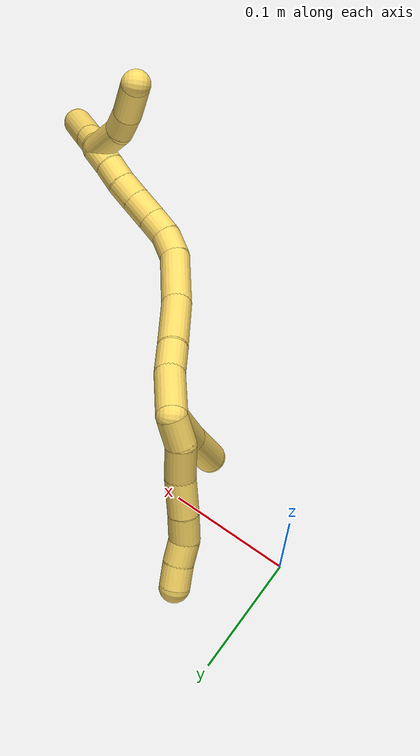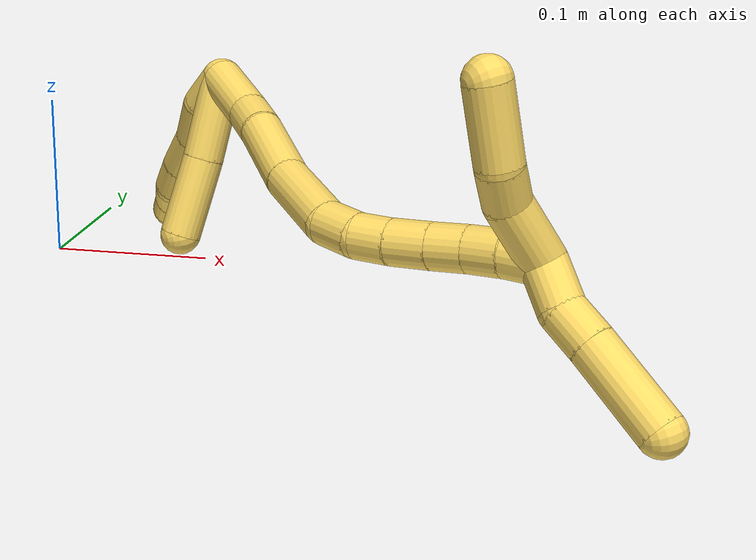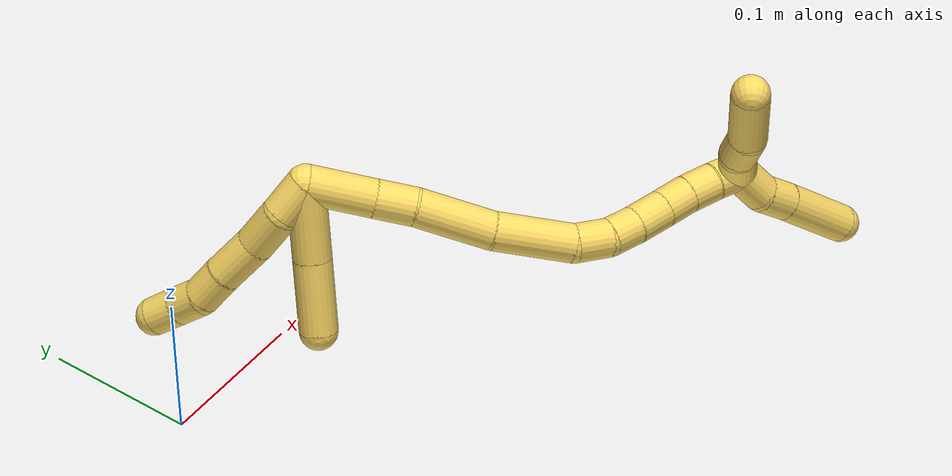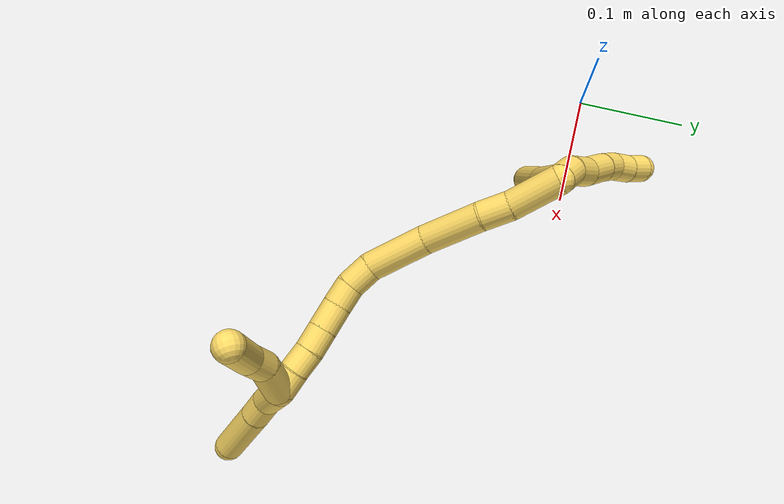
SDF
<sdf version="1.7">
 <world name="default">
  <model name="photoneo_s_sensor">
   <static>1</static>
   <pose>0 0 2 1.57079 1.57079 3.14159</pose>
   <link name="link">
    <inertial><mass>0.1</mass></inertial>
    <sensor name="sensor" type="depth">
     <update_rate>30</update_rate>
     <camera>
      <horizontal_fov>1.22</horizontal_fov>
      <image><width>1920</width><height>1200</height><format>B8G8R8</format></image>
      <clip><near>0.1</near><far>4</far></clip>
      <depth_camera><output>points</output></depth_camera>
     </camera>
     <plugin name="camera_plugin" filename="libgazebo_ros_depth_camera.so">
      <baseline>0.2</baseline>
      <alwaysOn>1</alwaysOn>
      <updateRate>0.0</updateRate>
      <cameraName>camera_ir</cameraName>
      <imageTopicName>/camera/color/image_raw</imageTopicName>
      <cameraInfoTopicName>/camera/color/camera_info</cameraInfoTopicName>
      <depthImageTopicName>/camera/depth/image_raw</depthImageTopicName>
      <depthImageCameraInfoTopicName>/camera/depth/camera_info</depthImageCameraInfoTopicName>
      <pointCloudTopicName>/camera/depth/points</pointCloudTopicName>
      <frameName>fr_optical</frameName>
      <pointCloudCutoff>0.1</pointCloudCutoff>
      <pointCloudCutoffMax>2.0</pointCloudCutoffMax>
      <distortionK1>0</distortionK1>
      <distortionK2>0</distortionK2>
      <distortionK3>0</distortionK3>
      <distortionT1>0</distortionT1>
      <distortionT2>0</distortionT2>
      <CxPrime>0</CxPrime>
      <Cx>0</Cx>
      <Cy>0</Cy>
      <focalLength>0</focalLength>
      <hackBaseline>0</hackBaseline>
     </plugin>
    </sensor>
   </link>
  </model>
  <model name="bin">
   <static>1</static>
   <link name="bottom">
    <collision name="collision-bottom">
     <pose>0 0 -0.01 0 -0 0</pose>
     <geometry><box><size>0.8 0.6 0.02</size></box></geometry>
     <surface>
      <friction><ode><mu>100</mu><mu2>100</mu2></ode></friction>
      <contact><collide_bitmask>65535</collide_bitmask></contact>
     </surface>
    </collision>
   </link>
   <link name="west_wall">
    <collision name="collision-west_wall">
     <pose>-0.41 0 0.1 0 -0 0</pose>
     <geometry><box><size>0.02 0.6 0.2</size></box></geometry>
     <surface>
      <friction><ode><mu>100</mu><mu2>100</mu2></ode></friction>
      <contact><collide_bitmask>65535</collide_bitmask></contact>
     </surface>
    </collision>
   </link>
   <link name="east_wall">
    <collision name="collision-east_wall">
     <pose>0.41 0 0.1 0 -0 0</pose>
     <geometry><box><size>0.02 0.6 0.2</size></box></geometry>
     <surface>
      <friction><ode><mu>100</mu><mu2>100</mu2></ode></friction>
      <contact><collide_bitmask>65535</collide_bitmask></contact>
     </surface>
    </collision>
   </link>
   <link name="south_wall">
    <collision name="collision-south_wall">
     <pose>0 -0.31 0.1 0 -0 0</pose>
     <geometry><box><size>0.8 0.02 0.2</size></box></geometry>
     <surface>
      <friction><ode><mu>100</mu><mu2>100</mu2></ode></friction>
      <contact><collide_bitmask>65535</collide_bitmask></contact>
     </surface>
    </collision>
   </link>
   <link name="north_wall">
    <collision name="collision-north_wall">
     <pose>0 0.31 0.1 0 -0 0</pose>
     <geometry><box><size>0.8 0.02 0.2</size></box></geometry>
     <surface>
      <friction><ode><mu>100</mu><mu2>100</mu2></ode></friction>
      <contact><collide_bitmask>65535</collide_bitmask></contact>
     </surface>
    </collision>
   </link>
  </model>
  <model name="5">
   <static>0</static>
   <link name="5">
    <collision name="collision-cylinder-e_1_2_8">
     <pose>0.001681 0.011258 0.005533 -1.114 0.133207 -0.083034</pose>
     <geometry><cylinder><radius>0.0125</radius><length>0.025313</length></cylinder></geometry>
     <surface>
      <friction><ode><mu>1.16</mu><mu2>1.16</mu2><slip1>0</slip1><slip2>0</slip2></ode></friction>
      <contact><ode><kp>1e+06</kp><kd>1</kd><max_vel>0</max_vel><min_depth>0.001</min_depth></ode></contact>
     </surface>
    </collision>
    <visual name="visual-cylinder-e_1_2_8">
     <pose>0.001681 0.011258 0.005533 -1.114 0.133207 -0.083034</pose>
     <geometry><cylinder><radius>0.0125</radius><length>0.025313</length></cylinder></geometry>
     <material><ambient>1 0.858824 0.4 1</ambient></material>
    </visual>
    <collision name="collision-cylinder-e_2_8_9">
     <pose>0.003423 0.037281 0.013617 -1.39972 0.004097 -0.00345</pose>
     <geometry><cylinder><radius>0.0125</radius><length>0.029966</length></cylinder></geometry>
     <surface>
      <friction><ode><mu>1.16</mu><mu2>1.16</mu2><slip1>0</slip1><slip2>0</slip2></ode></friction>
      <contact><ode><kp>1e+06</kp><kd>1</kd><max_vel>0</max_vel><min_depth>0.001</min_depth></ode></contact>
     </surface>
    </collision>
    <visual name="visual-cylinder-e_2_8_9">
     <pose>0.003423 0.037281 0.013617 -1.39972 0.004097 -0.00345</pose>
     <geometry><cylinder><radius>0.0125</radius><length>0.029966</length></cylinder></geometry>
     <material><ambient>1 0.858824 0.4 1</ambient></material>
    </visual>
    <collision name="collision-cylinder-e_3_9_10">
     <pose>0.005903 0.066797 0.019973 -1.31834 0.157403 -0.122052</pose>
     <geometry><cylinder><radius>0.0125</radius><length>0.030851</length></cylinder></geometry>
     <surface>
      <friction><ode><mu>1.16</mu><mu2>1.16</mu2><slip1>0</slip1><slip2>0</slip2></ode></friction>
      <contact><ode><kp>1e+06</kp><kd>1</kd><max_vel>0</max_vel><min_depth>0.001</min_depth></ode></contact>
     </surface>
    </collision>
    <visual name="visual-cylinder-e_3_9_10">
     <pose>0.005903 0.066797 0.019973 -1.31834 0.157403 -0.122052</pose>
     <geometry><cylinder><radius>0.0125</radius><length>0.030851</length></cylinder></geometry>
     <material><ambient>1 0.858824 0.4 1</ambient></material>
    </visual>
    <collision name="collision-cylinder-e_4_10_11">
     <pose>0.009334 0.092981 0.026315 -1.35245 0.086326 -0.069287</pose>
     <geometry><cylinder><radius>0.0125</radius><length>0.023508</length></cylinder></geometry>
     <surface>
      <friction><ode><mu>1.16</mu><mu2>1.16</mu2><slip1>0</slip1><slip2>0</slip2></ode></friction>
      <contact><ode><kp>1e+06</kp><kd>1</kd><max_vel>0</max_vel><min_depth>0.001</min_depth></ode></contact>
     </surface>
    </collision>
    <visual name="visual-cylinder-e_4_10_11">
     <pose>0.009334 0.092981 0.026315 -1.35245 0.086326 -0.069287</pose>
     <geometry><cylinder><radius>0.0125</radius><length>0.023508</length></cylinder></geometry>
     <material><ambient>1 0.858824 0.4 1</ambient></material>
    </visual>
    <collision name="collision-cylinder-e_5_11_12">
     <pose>0.012907 0.114182 0.027983 -1.65944 0.25528 -0.278681</pose>
     <geometry><cylinder><radius>0.0125</radius><length>0.020272</length></cylinder></geometry>
     <surface>
      <friction><ode><mu>1.16</mu><mu2>1.16</mu2><slip1>0</slip1><slip2>0</slip2></ode></friction>
      <contact><ode><kp>1e+06</kp><kd>1</kd><max_vel>0</max_vel><min_depth>0.001</min_depth></ode></contact>
     </surface>
    </collision>
    <visual name="visual-cylinder-e_5_11_12">
     <pose>0.012907 0.114182 0.027983 -1.65944 0.25528 -0.278681</pose>
     <geometry><cylinder><radius>0.0125</radius><length>0.020272</length></cylinder></geometry>
     <material><ambient>1 0.858824 0.4 1</ambient></material>
    </visual>
    <collision name="collision-cylinder-e_6_12_6">
     <pose>0.018774 0.133436 0.02703 -1.57977 0.335501 -0.338469</pose>
     <geometry><cylinder><radius>0.0125</radius><length>0.02009</length></cylinder></geometry>
     <surface>
      <friction><ode><mu>1.16</mu><mu2>1.16</mu2><slip1>0</slip1><slip2>0</slip2></ode></friction>
      <contact><ode><kp>1e+06</kp><kd>1</kd><max_vel>0</max_vel><min_depth>0.001</min_depth></ode></contact>
     </surface>
    </collision>
    <visual name="visual-cylinder-e_6_12_6">
     <pose>0.018774 0.133436 0.02703 -1.57977 0.335501 -0.338469</pose>
     <geometry><cylinder><radius>0.0125</radius><length>0.02009</length></cylinder></geometry>
     <material><ambient>1 0.858824 0.4 1</ambient></material>
    </visual>
    <collision name="collision-cylinder-e_1_2_13">
     <pose>-0.014076 0.017443 0.011851 -0.974034 -0.588581 0.318297</pose>
     <geometry><cylinder><radius>0.0125</radius><length>0.05071</length></cylinder></geometry>
     <surface>
      <friction><ode><mu>1.16</mu><mu2>1.16</mu2><slip1>0</slip1><slip2>0</slip2></ode></friction>
      <contact><ode><kp>1e+06</kp><kd>1</kd><max_vel>0</max_vel><min_depth>0.001</min_depth></ode></contact>
     </surface>
    </collision>
    <visual name="visual-cylinder-e_1_2_13">
     <pose>-0.014076 0.017443 0.011851 -0.974034 -0.588581 0.318297</pose>
     <geometry><cylinder><radius>0.0125</radius><length>0.05071</length></cylinder></geometry>
     <material><ambient>1 0.858824 0.4 1</ambient></material>
    </visual>
    <collision name="collision-cylinder-e_2_13_5">
     <pose>-0.041499 0.051135 0.036558 -0.901438 -0.572254 0.28285</pose>
     <geometry><cylinder><radius>0.0125</radius><length>0.04929</length></cylinder></geometry>
     <surface>
      <friction><ode><mu>1.16</mu><mu2>1.16</mu2><slip1>0</slip1><slip2>0</slip2></ode></friction>
      <contact><ode><kp>1e+06</kp><kd>1</kd><max_vel>0</max_vel><min_depth>0.001</min_depth></ode></contact>
     </surface>
    </collision>
    <visual name="visual-cylinder-e_2_13_5">
     <pose>-0.041499 0.051135 0.036558 -0.901438 -0.572254 0.28285</pose>
     <geometry><cylinder><radius>0.0125</radius><length>0.04929</length></cylinder></geometry>
     <material><ambient>1 0.858824 0.4 1</ambient></material>
    </visual>
    <collision name="collision-cylinder-e_1_2_14">
     <pose>-0.021234 -0.006251 3.4e-05 1.56535 -1.28451 -1.27929</pose>
     <geometry><cylinder><radius>0.0125</radius><length>0.04427</length></cylinder></geometry>
     <surface>
      <friction><ode><mu>1.16</mu><mu2>1.16</mu2><slip1>0</slip1><slip2>0</slip2></ode></friction>
      <contact><ode><kp>1e+06</kp><kd>1</kd><max_vel>0</max_vel><min_depth>0.001</min_depth></ode></contact>
     </surface>
    </collision>
    <visual name="visual-cylinder-e_1_2_14">
     <pose>-0.021234 -0.006251 3.4e-05 1.56535 -1.28451 -1.27929</pose>
     <geometry><cylinder><radius>0.0125</radius><length>0.04427</length></cylinder></geometry>
     <material><ambient>1 0.858824 0.4 1</ambient></material>
    </visual>
    <collision name="collision-cylinder-e_2_14_15">
     <pose>-0.05427 -0.017789 0.001349 1.33317 -1.13885 -0.93308</pose>
     <geometry><cylinder><radius>0.0125</radius><length>0.025991</length></cylinder></geometry>
     <surface>
      <friction><ode><mu>1.16</mu><mu2>1.16</mu2><slip1>0</slip1><slip2>0</slip2></ode></friction>
      <contact><ode><kp>1e+06</kp><kd>1</kd><max_vel>0</max_vel><min_depth>0.001</min_depth></ode></contact>
     </surface>
    </collision>
    <visual name="visual-cylinder-e_2_14_15">
     <pose>-0.05427 -0.017789 0.001349 1.33317 -1.13885 -0.93308</pose>
     <geometry><cylinder><radius>0.0125</radius><length>0.025991</length></cylinder></geometry>
     <material><ambient>1 0.858824 0.4 1</ambient></material>
    </visual>
    <collision name="collision-cylinder-e_3_15_16">
     <pose>-0.090309 -0.029912 0.005286 1.20007 -1.27697 -0.939738</pose>
     <geometry><cylinder><radius>0.0125</radius><length>0.050644</length></cylinder></geometry>
     <surface>
      <friction><ode><mu>1.16</mu><mu2>1.16</mu2><slip1>0</slip1><slip2>0</slip2></ode></friction>
      <contact><ode><kp>1e+06</kp><kd>1</kd><max_vel>0</max_vel><min_depth>0.001</min_depth></ode></contact>
     </surface>
    </collision>
    <visual name="visual-cylinder-e_3_15_16">
     <pose>-0.090309 -0.029912 0.005286 1.20007 -1.27697 -0.939738</pose>
     <geometry><cylinder><radius>0.0125</radius><length>0.050644</length></cylinder></geometry>
     <material><ambient>1 0.858824 0.4 1</ambient></material>
    </visual>
    <collision name="collision-cylinder-e_4_16_17">
     <pose>-0.138864 -0.046196 0.007852 1.58045 -1.20019 -1.2092</pose>
     <geometry><cylinder><radius>0.0125</radius><length>0.052178</length></cylinder></geometry>
     <surface>
      <friction><ode><mu>1.16</mu><mu2>1.16</mu2><slip1>0</slip1><slip2>0</slip2></ode></friction>
      <contact><ode><kp>1e+06</kp><kd>1</kd><max_vel>0</max_vel><min_depth>0.001</min_depth></ode></contact>
     </surface>
    </collision>
    <visual name="visual-cylinder-e_4_16_17">
     <pose>-0.138864 -0.046196 0.007852 1.58045 -1.20019 -1.2092</pose>
     <geometry><cylinder><radius>0.0125</radius><length>0.052178</length></cylinder></geometry>
     <material><ambient>1 0.858824 0.4 1</ambient></material>
    </visual>
    <collision name="collision-cylinder-e_5_17_18">
     <pose>-0.173136 -0.060296 0.003929 2.25989 -1.02639 -1.74755</pose>
     <geometry><cylinder><radius>0.0125</radius><length>0.023274</length></cylinder></geometry>
     <surface>
      <friction><ode><mu>1.16</mu><mu2>1.16</mu2><slip1>0</slip1><slip2>0</slip2></ode></friction>
      <contact><ode><kp>1e+06</kp><kd>1</kd><max_vel>0</max_vel><min_depth>0.001</min_depth></ode></contact>
     </surface>
    </collision>
    <visual name="visual-cylinder-e_5_17_18">
     <pose>-0.173136 -0.060296 0.003929 2.25989 -1.02639 -1.74755</pose>
     <geometry><cylinder><radius>0.0125</radius><length>0.023274</length></cylinder></geometry>
     <material><ambient>1 0.858824 0.4 1</ambient></material>
    </visual>
    <collision name="collision-cylinder-e_6_18_19">
     <pose>-0.190378 -0.068476 -0.005792 2.6018 -0.815261 -2.00203</pose>
     <geometry><cylinder><radius>0.0125</radius><length>0.020023</length></cylinder></geometry>
     <surface>
      <friction><ode><mu>1.16</mu><mu2>1.16</mu2><slip1>0</slip1><slip2>0</slip2></ode></friction>
      <contact><ode><kp>1e+06</kp><kd>1</kd><max_vel>0</max_vel><min_depth>0.001</min_depth></ode></contact>
     </surface>
    </collision>
    <visual name="visual-cylinder-e_6_18_19">
     <pose>-0.190378 -0.068476 -0.005792 2.6018 -0.815261 -2.00203</pose>
     <geometry><cylinder><radius>0.0125</radius><length>0.020023</length></cylinder></geometry>
     <material><ambient>1 0.858824 0.4 1</ambient></material>
    </visual>
    <collision name="collision-cylinder-e_7_19_20">
     <pose>-0.20551 -0.076382 -0.01891 2.59707 -0.748147 -1.90516</pose>
     <geometry><cylinder><radius>0.0125</radius><length>0.023062</length></cylinder></geometry>
     <surface>
      <friction><ode><mu>1.16</mu><mu2>1.16</mu2><slip1>0</slip1><slip2>0</slip2></ode></friction>
      <contact><ode><kp>1e+06</kp><kd>1</kd><max_vel>0</max_vel><min_depth>0.001</min_depth></ode></contact>
     </surface>
    </collision>
    <visual name="visual-cylinder-e_7_19_20">
     <pose>-0.20551 -0.076382 -0.01891 2.59707 -0.748147 -1.90516</pose>
     <geometry><cylinder><radius>0.0125</radius><length>0.023062</length></cylinder></geometry>
     <material><ambient>1 0.858824 0.4 1</ambient></material>
    </visual>
    <collision name="collision-cylinder-e_8_20_21">
     <pose>-0.220142 -0.084794 -0.03258 2.5821 -0.729032 -1.85089</pose>
     <geometry><cylinder><radius>0.0125</radius><length>0.020378</length></cylinder></geometry>
     <surface>
      <friction><ode><mu>1.16</mu><mu2>1.16</mu2><slip1>0</slip1><slip2>0</slip2></ode></friction>
      <contact><ode><kp>1e+06</kp><kd>1</kd><max_vel>0</max_vel><min_depth>0.001</min_depth></ode></contact>
     </surface>
    </collision>
    <visual name="visual-cylinder-e_8_20_21">
     <pose>-0.220142 -0.084794 -0.03258 2.5821 -0.729032 -1.85089</pose>
     <geometry><cylinder><radius>0.0125</radius><length>0.020378</length></cylinder></geometry>
     <material><ambient>1 0.858824 0.4 1</ambient></material>
    </visual>
    <collision name="collision-cylinder-e_9_21_22">
     <pose>-0.234134 -0.093215 -0.044532 2.46914 -0.796597 -1.75538</pose>
     <geometry><cylinder><radius>0.0125</radius><length>0.020152</length></cylinder></geometry>
     <surface>
      <friction><ode><mu>1.16</mu><mu2>1.16</mu2><slip1>0</slip1><slip2>0</slip2></ode></friction>
      <contact><ode><kp>1e+06</kp><kd>1</kd><max_vel>0</max_vel><min_depth>0.001</min_depth></ode></contact>
     </surface>
    </collision>
    <visual name="visual-cylinder-e_9_21_22">
     <pose>-0.234134 -0.093215 -0.044532 2.46914 -0.796597 -1.75538</pose>
     <geometry><cylinder><radius>0.0125</radius><length>0.020152</length></cylinder></geometry>
     <material><ambient>1 0.858824 0.4 1</ambient></material>
    </visual>
    <collision name="collision-cylinder-e_10_22_1">
     <pose>-0.248878 -0.101172 -0.055581 2.56913 -0.852647 -1.99164</pose>
     <geometry><cylinder><radius>0.0125</radius><length>0.020027</length></cylinder></geometry>
     <surface>
      <friction><ode><mu>1.16</mu><mu2>1.16</mu2><slip1>0</slip1><slip2>0</slip2></ode></friction>
      <contact><ode><kp>1e+06</kp><kd>1</kd><max_vel>0</max_vel><min_depth>0.001</min_depth></ode></contact>
     </surface>
    </collision>
    <visual name="visual-cylinder-e_10_22_1">
     <pose>-0.248878 -0.101172 -0.055581 2.56913 -0.852647 -1.99164</pose>
     <geometry><cylinder><radius>0.0125</radius><length>0.020027</length></cylinder></geometry>
     <material><ambient>1 0.858824 0.4 1</ambient></material>
    </visual>
    <collision name="collision-cylinder-e_1_1_23">
     <pose>-0.268877 -0.101416 -0.059967 -1.2374 -1.29544 0.988206</pose>
     <geometry><cylinder><radius>0.0125</radius><length>0.025892</length></cylinder></geometry>
     <surface>
      <friction><ode><mu>1.16</mu><mu2>1.16</mu2><slip1>0</slip1><slip2>0</slip2></ode></friction>
      <contact><ode><kp>1e+06</kp><kd>1</kd><max_vel>0</max_vel><min_depth>0.001</min_depth></ode></contact>
     </surface>
    </collision>
    <visual name="visual-cylinder-e_1_1_23">
     <pose>-0.268877 -0.101416 -0.059967 -1.2374 -1.29544 0.988206</pose>
     <geometry><cylinder><radius>0.0125</radius><length>0.025892</length></cylinder></geometry>
     <material><ambient>1 0.858824 0.4 1</ambient></material>
    </visual>
    <collision name="collision-cylinder-e_2_23_24">
     <pose>-0.292007 -0.097071 -0.060995 -2.70439 -1.3491 2.59966</pose>
     <geometry><cylinder><radius>0.0125</radius><length>0.02188</length></cylinder></geometry>
     <surface>
      <friction><ode><mu>1.16</mu><mu2>1.16</mu2><slip1>0</slip1><slip2>0</slip2></ode></friction>
      <contact><ode><kp>1e+06</kp><kd>1</kd><max_vel>0</max_vel><min_depth>0.001</min_depth></ode></contact>
     </surface>
    </collision>
    <visual name="visual-cylinder-e_2_23_24">
     <pose>-0.292007 -0.097071 -0.060995 -2.70439 -1.3491 2.59966</pose>
     <geometry><cylinder><radius>0.0125</radius><length>0.02188</length></cylinder></geometry>
     <material><ambient>1 0.858824 0.4 1</ambient></material>
    </visual>
    <collision name="collision-cylinder-e_3_24_4">
     <pose>-0.328285 -0.093174 -0.067419 -2.54582 -1.37311 2.42472</pose>
     <geometry><cylinder><radius>0.0125</radius><length>0.052229</length></cylinder></geometry>
     <surface>
      <friction><ode><mu>1.16</mu><mu2>1.16</mu2><slip1>0</slip1><slip2>0</slip2></ode></friction>
      <contact><ode><kp>1e+06</kp><kd>1</kd><max_vel>0</max_vel><min_depth>0.001</min_depth></ode></contact>
     </surface>
    </collision>
    <visual name="visual-cylinder-e_3_24_4">
     <pose>-0.328285 -0.093174 -0.067419 -2.54582 -1.37311 2.42472</pose>
     <geometry><cylinder><radius>0.0125</radius><length>0.052229</length></cylinder></geometry>
     <material><ambient>1 0.858824 0.4 1</ambient></material>
    </visual>
    <collision name="collision-cylinder-e_1_1_25">
     <pose>-0.245829 -0.118101 -0.054459 1.10833 0.617013 0.389434</pose>
     <geometry><cylinder><radius>0.0125</radius><length>0.036604</length></cylinder></geometry>
     <surface>
      <friction><ode><mu>1.16</mu><mu2>1.16</mu2><slip1>0</slip1><slip2>0</slip2></ode></friction>
      <contact><ode><kp>1e+06</kp><kd>1</kd><max_vel>0</max_vel><min_depth>0.001</min_depth></ode></contact>
     </surface>
    </collision>
    <visual name="visual-cylinder-e_1_1_25">
     <pose>-0.245829 -0.118101 -0.054459 1.10833 0.617013 0.389434</pose>
     <geometry><cylinder><radius>0.0125</radius><length>0.036604</length></cylinder></geometry>
     <material><ambient>1 0.858824 0.4 1</ambient></material>
    </visual>
    <collision name="collision-cylinder-e_2_25_26">
     <pose>-0.23119 -0.141391 -0.046121 1.40337 0.382322 0.32425</pose>
     <geometry><cylinder><radius>0.0125</radius><length>0.02171</length></cylinder></geometry>
     <surface>
      <friction><ode><mu>1.16</mu><mu2>1.16</mu2><slip1>0</slip1><slip2>0</slip2></ode></friction>
      <contact><ode><kp>1e+06</kp><kd>1</kd><max_vel>0</max_vel><min_depth>0.001</min_depth></ode></contact>
     </surface>
    </collision>
    <visual name="visual-cylinder-e_2_25_26">
     <pose>-0.23119 -0.141391 -0.046121 1.40337 0.382322 0.32425</pose>
     <geometry><cylinder><radius>0.0125</radius><length>0.02171</length></cylinder></geometry>
     <material><ambient>1 0.858824 0.4 1</ambient></material>
    </visual>
    <collision name="collision-cylinder-e_3_26_3">
     <pose>-0.214934 -0.168212 -0.044798 1.59185 0.625659 0.638093</pose>
     <geometry><cylinder><radius>0.0125</radius><length>0.041686</length></cylinder></geometry>
     <surface>
      <friction><ode><mu>1.16</mu><mu2>1.16</mu2><slip1>0</slip1><slip2>0</slip2></ode></friction>
      <contact><ode><kp>1e+06</kp><kd>1</kd><max_vel>0</max_vel><min_depth>0.001</min_depth></ode></contact>
     </surface>
    </collision>
    <visual name="visual-cylinder-e_3_26_3">
     <pose>-0.214934 -0.168212 -0.044798 1.59185 0.625659 0.638093</pose>
     <geometry><cylinder><radius>0.0125</radius><length>0.041686</length></cylinder></geometry>
     <material><ambient>1 0.858824 0.4 1</ambient></material>
    </visual>
    <collision name="collision-sphere-3">
     <pose>-0.202727 -0.185103 -0.045154 0 -0 0</pose>
     <geometry><sphere><radius>0.0125</radius></sphere></geometry>
     <surface>
      <friction><ode><mu>1.16</mu><mu2>1.16</mu2><slip1>0</slip1><slip2>0</slip2></ode></friction>
      <contact><ode><kp>1e+06</kp><kd>1</kd><max_vel>0</max_vel><min_depth>0.001</min_depth></ode></contact>
     </surface>
    </collision>
    <visual name="visual-sphere-3">
     <pose>-0.202727 -0.185103 -0.045154 0 -0 0</pose>
     <geometry><sphere><radius>0.0125</radius></sphere></geometry>
     <material><ambient>1 0.858824 0.4 1</ambient></material>
    </visual>
    <collision name="collision-sphere-26">
     <pose>-0.22714 -0.151321 -0.044442 0 -0 0</pose>
     <geometry><sphere><radius>0.0125</radius></sphere></geometry>
     <surface>
      <friction><ode><mu>1.16</mu><mu2>1.16</mu2><slip1>0</slip1><slip2>0</slip2></ode></friction>
      <contact><ode><kp>1e+06</kp><kd>1</kd><max_vel>0</max_vel><min_depth>0.001</min_depth></ode></contact>
     </surface>
    </collision>
    <visual name="visual-sphere-26">
     <pose>-0.22714 -0.151321 -0.044442 0 -0 0</pose>
     <geometry><sphere><radius>0.0125</radius></sphere></geometry>
     <material><ambient>1 0.858824 0.4 1</ambient></material>
    </visual>
    <collision name="collision-sphere-25">
     <pose>-0.235239 -0.131461 -0.047799 0 -0 0</pose>
     <geometry><sphere><radius>0.0125</radius></sphere></geometry>
     <surface>
      <friction><ode><mu>1.16</mu><mu2>1.16</mu2><slip1>0</slip1><slip2>0</slip2></ode></friction>
      <contact><ode><kp>1e+06</kp><kd>1</kd><max_vel>0</max_vel><min_depth>0.001</min_depth></ode></contact>
     </surface>
    </collision>
    <visual name="visual-sphere-25">
     <pose>-0.235239 -0.131461 -0.047799 0 -0 0</pose>
     <geometry><sphere><radius>0.0125</radius></sphere></geometry>
     <material><ambient>1 0.858824 0.4 1</ambient></material>
    </visual>
    <collision name="collision-sphere-4">
     <pose>-0.35389 -0.090296 -0.071665 0 -0 0</pose>
     <geometry><sphere><radius>0.0125</radius></sphere></geometry>
     <surface>
      <friction><ode><mu>1.16</mu><mu2>1.16</mu2><slip1>0</slip1><slip2>0</slip2></ode></friction>
      <contact><ode><kp>1e+06</kp><kd>1</kd><max_vel>0</max_vel><min_depth>0.001</min_depth></ode></contact>
     </surface>
    </collision>
    <visual name="visual-sphere-4">
     <pose>-0.35389 -0.090296 -0.071665 0 -0 0</pose>
     <geometry><sphere><radius>0.0125</radius></sphere></geometry>
     <material><ambient>1 0.858824 0.4 1</ambient></material>
    </visual>
    <collision name="collision-sphere-24">
     <pose>-0.302679 -0.096052 -0.063174 0 -0 0</pose>
     <geometry><sphere><radius>0.0125</radius></sphere></geometry>
     <surface>
      <friction><ode><mu>1.16</mu><mu2>1.16</mu2><slip1>0</slip1><slip2>0</slip2></ode></friction>
      <contact><ode><kp>1e+06</kp><kd>1</kd><max_vel>0</max_vel><min_depth>0.001</min_depth></ode></contact>
     </surface>
    </collision>
    <visual name="visual-sphere-24">
     <pose>-0.302679 -0.096052 -0.063174 0 -0 0</pose>
     <geometry><sphere><radius>0.0125</radius></sphere></geometry>
     <material><ambient>1 0.858824 0.4 1</ambient></material>
    </visual>
    <collision name="collision-sphere-23">
     <pose>-0.281335 -0.098089 -0.058815 0 -0 0</pose>
     <geometry><sphere><radius>0.0125</radius></sphere></geometry>
     <surface>
      <friction><ode><mu>1.16</mu><mu2>1.16</mu2><slip1>0</slip1><slip2>0</slip2></ode></friction>
      <contact><ode><kp>1e+06</kp><kd>1</kd><max_vel>0</max_vel><min_depth>0.001</min_depth></ode></contact>
     </surface>
    </collision>
    <visual name="visual-sphere-23">
     <pose>-0.281335 -0.098089 -0.058815 0 -0 0</pose>
     <geometry><sphere><radius>0.0125</radius></sphere></geometry>
     <material><ambient>1 0.858824 0.4 1</ambient></material>
    </visual>
    <collision name="collision-sphere-1">
     <pose>-0.256419 -0.104742 -0.061119 0 -0 0</pose>
     <geometry><sphere><radius>0.0125</radius></sphere></geometry>
     <surface>
      <friction><ode><mu>1.16</mu><mu2>1.16</mu2><slip1>0</slip1><slip2>0</slip2></ode></friction>
      <contact><ode><kp>1e+06</kp><kd>1</kd><max_vel>0</max_vel><min_depth>0.001</min_depth></ode></contact>
     </surface>
    </collision>
    <visual name="visual-sphere-1">
     <pose>-0.256419 -0.104742 -0.061119 0 -0 0</pose>
     <geometry><sphere><radius>0.0125</radius></sphere></geometry>
     <material><ambient>1 0.858824 0.4 1</ambient></material>
    </visual>
    <collision name="collision-sphere-22">
     <pose>-0.241338 -0.097603 -0.050043 0 -0 0</pose>
     <geometry><sphere><radius>0.0125</radius></sphere></geometry>
     <surface>
      <friction><ode><mu>1.16</mu><mu2>1.16</mu2><slip1>0</slip1><slip2>0</slip2></ode></friction>
      <contact><ode><kp>1e+06</kp><kd>1</kd><max_vel>0</max_vel><min_depth>0.001</min_depth></ode></contact>
     </surface>
    </collision>
    <visual name="visual-sphere-22">
     <pose>-0.241338 -0.097603 -0.050043 0 -0 0</pose>
     <geometry><sphere><radius>0.0125</radius></sphere></geometry>
     <material><ambient>1 0.858824 0.4 1</ambient></material>
    </visual>
    <collision name="collision-sphere-21">
     <pose>-0.22693 -0.088827 -0.039021 0 -0 0</pose>
     <geometry><sphere><radius>0.0125</radius></sphere></geometry>
     <surface>
      <friction><ode><mu>1.16</mu><mu2>1.16</mu2><slip1>0</slip1><slip2>0</slip2></ode></friction>
      <contact><ode><kp>1e+06</kp><kd>1</kd><max_vel>0</max_vel><min_depth>0.001</min_depth></ode></contact>
     </surface>
    </collision>
    <visual name="visual-sphere-21">
     <pose>-0.22693 -0.088827 -0.039021 0 -0 0</pose>
     <geometry><sphere><radius>0.0125</radius></sphere></geometry>
     <material><ambient>1 0.858824 0.4 1</ambient></material>
    </visual>
    <collision name="collision-sphere-12">
     <pose>0.015467 0.123951 0.027115 0 -0 0</pose>
     <geometry><sphere><radius>0.0125</radius></sphere></geometry>
     <surface>
      <friction><ode><mu>1.16</mu><mu2>1.16</mu2><slip1>0</slip1><slip2>0</slip2></ode></friction>
      <contact><ode><kp>1e+06</kp><kd>1</kd><max_vel>0</max_vel><min_depth>0.001</min_depth></ode></contact>
     </surface>
    </collision>
    <visual name="visual-sphere-12">
     <pose>0.015467 0.123951 0.027115 0 -0 0</pose>
     <geometry><sphere><radius>0.0125</radius></sphere></geometry>
     <material><ambient>1 0.858824 0.4 1</ambient></material>
    </visual>
    <collision name="collision-sphere-11">
     <pose>0.010347 0.104413 0.028851 0 -0 0</pose>
     <geometry><sphere><radius>0.0125</radius></sphere></geometry>
     <surface>
      <friction><ode><mu>1.16</mu><mu2>1.16</mu2><slip1>0</slip1><slip2>0</slip2></ode></friction>
      <contact><ode><kp>1e+06</kp><kd>1</kd><max_vel>0</max_vel><min_depth>0.001</min_depth></ode></contact>
     </surface>
    </collision>
    <visual name="visual-sphere-11">
     <pose>0.010347 0.104413 0.028851 0 -0 0</pose>
     <geometry><sphere><radius>0.0125</radius></sphere></geometry>
     <material><ambient>1 0.858824 0.4 1</ambient></material>
    </visual>
    <collision name="collision-sphere-10">
     <pose>0.008321 0.081548 0.023778 0 -0 0</pose>
     <geometry><sphere><radius>0.0125</radius></sphere></geometry>
     <surface>
      <friction><ode><mu>1.16</mu><mu2>1.16</mu2><slip1>0</slip1><slip2>0</slip2></ode></friction>
      <contact><ode><kp>1e+06</kp><kd>1</kd><max_vel>0</max_vel><min_depth>0.001</min_depth></ode></contact>
     </surface>
    </collision>
    <visual name="visual-sphere-10">
     <pose>0.008321 0.081548 0.023778 0 -0 0</pose>
     <geometry><sphere><radius>0.0125</radius></sphere></geometry>
     <material><ambient>1 0.858824 0.4 1</ambient></material>
    </visual>
    <collision name="collision-sphere-9">
     <pose>0.003485 0.052045 0.016167 0 -0 0</pose>
     <geometry><sphere><radius>0.0125</radius></sphere></geometry>
     <surface>
      <friction><ode><mu>1.16</mu><mu2>1.16</mu2><slip1>0</slip1><slip2>0</slip2></ode></friction>
      <contact><ode><kp>1e+06</kp><kd>1</kd><max_vel>0</max_vel><min_depth>0.001</min_depth></ode></contact>
     </surface>
    </collision>
    <visual name="visual-sphere-9">
     <pose>0.003485 0.052045 0.016167 0 -0 0</pose>
     <geometry><sphere><radius>0.0125</radius></sphere></geometry>
     <material><ambient>1 0.858824 0.4 1</ambient></material>
    </visual>
    <collision name="collision-sphere-2">
     <geometry><sphere><radius>0.0125</radius></sphere></geometry>
     <surface>
      <friction><ode><mu>1.16</mu><mu2>1.16</mu2><slip1>0</slip1><slip2>0</slip2></ode></friction>
      <contact><ode><kp>1e+06</kp><kd>1</kd><max_vel>0</max_vel><min_depth>0.001</min_depth></ode></contact>
     </surface>
    </collision>
    <visual name="visual-sphere-2">
     <geometry><sphere><radius>0.0125</radius></sphere></geometry>
     <material><ambient>1 0.858824 0.4 1</ambient></material>
    </visual>
    <collision name="collision-sphere-19">
     <pose>-0.197666 -0.072004 -0.011681 0 -0 0</pose>
     <geometry><sphere><radius>0.0125</radius></sphere></geometry>
     <surface>
      <friction><ode><mu>1.16</mu><mu2>1.16</mu2><slip1>0</slip1><slip2>0</slip2></ode></friction>
      <contact><ode><kp>1e+06</kp><kd>1</kd><max_vel>0</max_vel><min_depth>0.001</min_depth></ode></contact>
     </surface>
    </collision>
    <visual name="visual-sphere-19">
     <pose>-0.197666 -0.072004 -0.011681 0 -0 0</pose>
     <geometry><sphere><radius>0.0125</radius></sphere></geometry>
     <material><ambient>1 0.858824 0.4 1</ambient></material>
    </visual>
    <collision name="collision-sphere-8">
     <pose>0.003362 0.022516 0.011066 0 -0 0</pose>
     <geometry><sphere><radius>0.0125</radius></sphere></geometry>
     <surface>
      <friction><ode><mu>1.16</mu><mu2>1.16</mu2><slip1>0</slip1><slip2>0</slip2></ode></friction>
      <contact><ode><kp>1e+06</kp><kd>1</kd><max_vel>0</max_vel><min_depth>0.001</min_depth></ode></contact>
     </surface>
    </collision>
    <visual name="visual-sphere-8">
     <pose>0.003362 0.022516 0.011066 0 -0 0</pose>
     <geometry><sphere><radius>0.0125</radius></sphere></geometry>
     <material><ambient>1 0.858824 0.4 1</ambient></material>
    </visual>
    <collision name="collision-sphere-6">
     <pose>0.022081 0.14292 0.026945 0 -0 0</pose>
     <geometry><sphere><radius>0.0125</radius></sphere></geometry>
     <surface>
      <friction><ode><mu>1.16</mu><mu2>1.16</mu2><slip1>0</slip1><slip2>0</slip2></ode></friction>
      <contact><ode><kp>1e+06</kp><kd>1</kd><max_vel>0</max_vel><min_depth>0.001</min_depth></ode></contact>
     </surface>
    </collision>
    <visual name="visual-sphere-6">
     <pose>0.022081 0.14292 0.026945 0 -0 0</pose>
     <geometry><sphere><radius>0.0125</radius></sphere></geometry>
     <material><ambient>1 0.858824 0.4 1</ambient></material>
    </visual>
    <collision name="collision-sphere-13">
     <pose>-0.028153 0.034887 0.023702 0 -0 0</pose>
     <geometry><sphere><radius>0.0125</radius></sphere></geometry>
     <surface>
      <friction><ode><mu>1.16</mu><mu2>1.16</mu2><slip1>0</slip1><slip2>0</slip2></ode></friction>
      <contact><ode><kp>1e+06</kp><kd>1</kd><max_vel>0</max_vel><min_depth>0.001</min_depth></ode></contact>
     </surface>
    </collision>
    <visual name="visual-sphere-13">
     <pose>-0.028153 0.034887 0.023702 0 -0 0</pose>
     <geometry><sphere><radius>0.0125</radius></sphere></geometry>
     <material><ambient>1 0.858824 0.4 1</ambient></material>
    </visual>
    <collision name="collision-sphere-5">
     <pose>-0.054845 0.067383 0.049413 0 -0 0</pose>
     <geometry><sphere><radius>0.0125</radius></sphere></geometry>
     <surface>
      <friction><ode><mu>1.16</mu><mu2>1.16</mu2><slip1>0</slip1><slip2>0</slip2></ode></friction>
      <contact><ode><kp>1e+06</kp><kd>1</kd><max_vel>0</max_vel><min_depth>0.001</min_depth></ode></contact>
     </surface>
    </collision>
    <visual name="visual-sphere-5">
     <pose>-0.054845 0.067383 0.049413 0 -0 0</pose>
     <geometry><sphere><radius>0.0125</radius></sphere></geometry>
     <material><ambient>1 0.858824 0.4 1</ambient></material>
    </visual>
    <collision name="collision-sphere-14">
     <pose>-0.042468 -0.012501 6.8e-05 0 -0 0</pose>
     <geometry><sphere><radius>0.0125</radius></sphere></geometry>
     <surface>
      <friction><ode><mu>1.16</mu><mu2>1.16</mu2><slip1>0</slip1><slip2>0</slip2></ode></friction>
      <contact><ode><kp>1e+06</kp><kd>1</kd><max_vel>0</max_vel><min_depth>0.001</min_depth></ode></contact>
     </surface>
    </collision>
    <visual name="visual-sphere-14">
     <pose>-0.042468 -0.012501 6.8e-05 0 -0 0</pose>
     <geometry><sphere><radius>0.0125</radius></sphere></geometry>
     <material><ambient>1 0.858824 0.4 1</ambient></material>
    </visual>
    <collision name="collision-sphere-15">
     <pose>-0.066072 -0.023077 0.002629 0 -0 0</pose>
     <geometry><sphere><radius>0.0125</radius></sphere></geometry>
     <surface>
      <friction><ode><mu>1.16</mu><mu2>1.16</mu2><slip1>0</slip1><slip2>0</slip2></ode></friction>
      <contact><ode><kp>1e+06</kp><kd>1</kd><max_vel>0</max_vel><min_depth>0.001</min_depth></ode></contact>
     </surface>
    </collision>
    <visual name="visual-sphere-15">
     <pose>-0.066072 -0.023077 0.002629 0 -0 0</pose>
     <geometry><sphere><radius>0.0125</radius></sphere></geometry>
     <material><ambient>1 0.858824 0.4 1</ambient></material>
    </visual>
    <collision name="collision-sphere-16">
     <pose>-0.114546 -0.036747 0.007943 0 -0 0</pose>
     <geometry><sphere><radius>0.0125</radius></sphere></geometry>
     <surface>
      <friction><ode><mu>1.16</mu><mu2>1.16</mu2><slip1>0</slip1><slip2>0</slip2></ode></friction>
      <contact><ode><kp>1e+06</kp><kd>1</kd><max_vel>0</max_vel><min_depth>0.001</min_depth></ode></contact>
     </surface>
    </collision>
    <visual name="visual-sphere-16">
     <pose>-0.114546 -0.036747 0.007943 0 -0 0</pose>
     <geometry><sphere><radius>0.0125</radius></sphere></geometry>
     <material><ambient>1 0.858824 0.4 1</ambient></material>
    </visual>
    <collision name="collision-sphere-17">
     <pose>-0.163182 -0.055644 0.007761 0 -0 0</pose>
     <geometry><sphere><radius>0.0125</radius></sphere></geometry>
     <surface>
      <friction><ode><mu>1.16</mu><mu2>1.16</mu2><slip1>0</slip1><slip2>0</slip2></ode></friction>
      <contact><ode><kp>1e+06</kp><kd>1</kd><max_vel>0</max_vel><min_depth>0.001</min_depth></ode></contact>
     </surface>
    </collision>
    <visual name="visual-sphere-17">
     <pose>-0.163182 -0.055644 0.007761 0 -0 0</pose>
     <geometry><sphere><radius>0.0125</radius></sphere></geometry>
     <material><ambient>1 0.858824 0.4 1</ambient></material>
    </visual>
    <collision name="collision-sphere-18">
     <pose>-0.183091 -0.064948 9.6e-05 0 -0 0</pose>
     <geometry><sphere><radius>0.0125</radius></sphere></geometry>
     <surface>
      <friction><ode><mu>1.16</mu><mu2>1.16</mu2><slip1>0</slip1><slip2>0</slip2></ode></friction>
      <contact><ode><kp>1e+06</kp><kd>1</kd><max_vel>0</max_vel><min_depth>0.001</min_depth></ode></contact>
     </surface>
    </collision>
    <visual name="visual-sphere-18">
     <pose>-0.183091 -0.064948 9.6e-05 0 -0 0</pose>
     <geometry><sphere><radius>0.0125</radius></sphere></geometry>
     <material><ambient>1 0.858824 0.4 1</ambient></material>
    </visual>
    <collision name="collision-sphere-20">
     <pose>-0.213355 -0.08076 -0.026139 0 -0 0</pose>
     <geometry><sphere><radius>0.0125</radius></sphere></geometry>
     <surface>
      <friction><ode><mu>1.16</mu><mu2>1.16</mu2><slip1>0</slip1><slip2>0</slip2></ode></friction>
      <contact><ode><kp>1e+06</kp><kd>1</kd><max_vel>0</max_vel><min_depth>0.001</min_depth></ode></contact>
     </surface>
    </collision>
    <visual name="visual-sphere-20">
     <pose>-0.213355 -0.08076 -0.026139 0 -0 0</pose>
     <geometry><sphere><radius>0.0125</radius></sphere></geometry>
     <material><ambient>1 0.858824 0.4 1</ambient></material>
    </visual>
    <inertial>
     <pose>-0.127983 -0.033073 -0.011194 0 -0 0</pose>
     <mass>0.75</mass>
     <inertia><ixx>1.6e-05</ixx><ixy>0</ixy><ixz>0</ixz><iyy>8.4e-05</iyy><iyz>0</iyz><izz>6.1e-05</izz></inertia>
    </inertial>
   </link>
   <pose>0.11699 -0.011445 0.120986 -1.80703 -0.588718 2.30269</pose>
  </model>
 </world>
</sdf>
